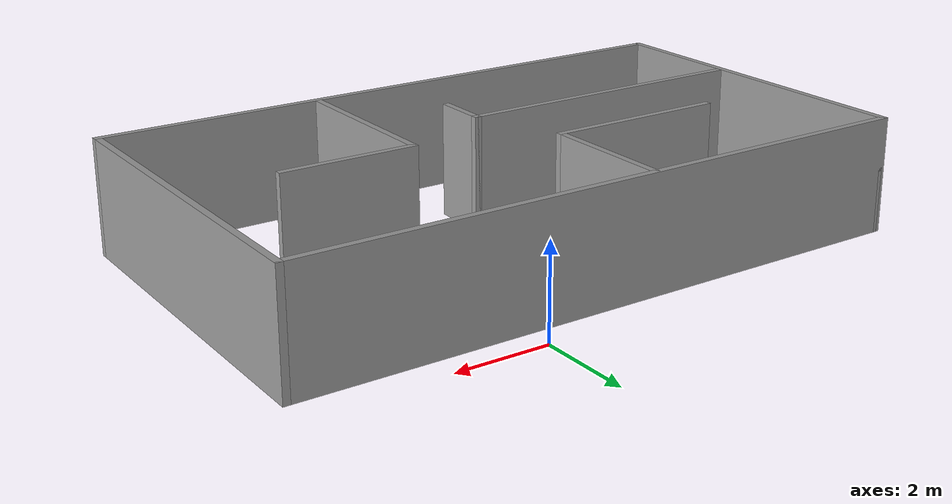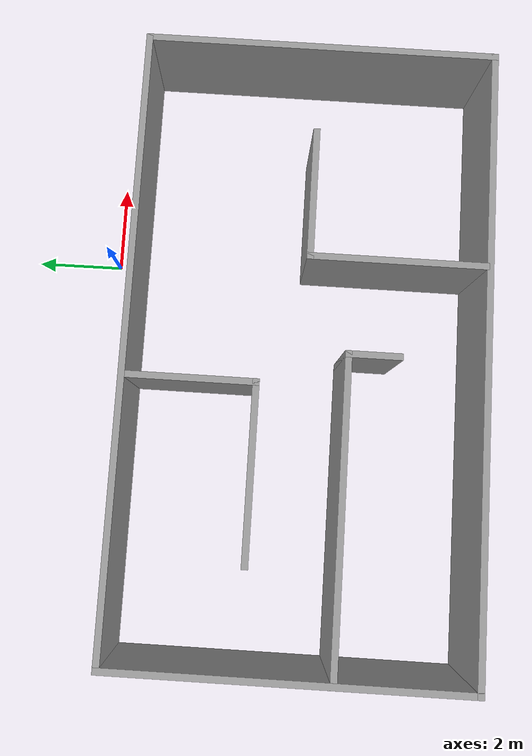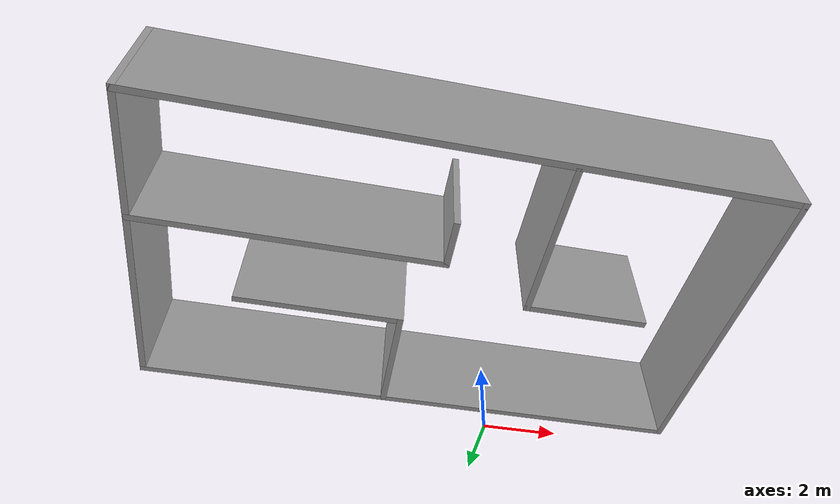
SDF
<?xml version='1.0'?>
<sdf version='1.7'>
  <model name='room'>
    <pose>-2.083 -4.28075 0 0 -0 0</pose>
    <link name='Wall_14'>
      <collision name='Wall_14_Collision'>
        <geometry>
          <box>
            <size>14 0.15 2.5</size>
          </box>
        </geometry>
        <pose>0 0 1.25 0 -0 0</pose>
      </collision>
      <visual name='Wall_14_Visual'>
        <pose>0 0 1.25 0 -0 0</pose>
        <geometry>
          <box>
            <size>14 0.15 2.5</size>
          </box>
        </geometry>
        <material>
          <script>
            <uri>file://media/materials/scripts/gazebo.material</uri>
            <name>Gazebo/Grey</name>
          </script>
          <ambient>1 1 1 1</ambient>
        </material>
        <meta>
          <layer>0</layer>
        </meta>
      </visual>
      <pose>0 3.64425 0 0 -0 0</pose>
    </link>
    <link name='Wall_17'>
      <collision name='Wall_17_Collision'>
        <geometry>
          <box>
            <size>8 0.15 2.5</size>
          </box>
        </geometry>
        <pose>0 0 1.25 0 -0 0</pose>
      </collision>
      <visual name='Wall_17_Visual'>
        <pose>0 0 1.25 0 -0 0</pose>
        <geometry>
          <box>
            <size>8 0.15 2.5</size>
          </box>
        </geometry>
        <material>
          <script>
            <uri>file://media/materials/scripts/gazebo.material</uri>
            <name>Gazebo/Grey</name>
          </script>
          <ambient>1 1 1 1</ambient>
        </material>
        <meta>
          <layer>0</layer>
        </meta>
      </visual>
      <pose>6.925 -0.28075 0 0 -0 -1.5708</pose>
    </link>
    <link name='Wall_18'>
      <collision name='Wall_18_Collision'>
        <geometry>
          <box>
            <size>14 0.15 2.5</size>
          </box>
        </geometry>
        <pose>0 0 1.25 0 -0 0</pose>
      </collision>
      <visual name='Wall_18_Visual'>
        <pose>0 0 1.25 0 -0 0</pose>
        <geometry>
          <box>
            <size>14 0.15 2.5</size>
          </box>
        </geometry>
        <material>
          <script>
            <uri>file://media/materials/scripts/gazebo.material</uri>
            <name>Gazebo/Grey</name>
          </script>
          <ambient>1 1 1 1</ambient>
        </material>
        <meta>
          <layer>0</layer>
        </meta>
      </visual>
      <pose>0 -4.20575 0 0 -0 3.14159</pose>
    </link>
    <link name='Wall_19'>
      <collision name='Wall_19_Collision'>
        <geometry>
          <box>
            <size>8 0.15 2.5</size>
          </box>
        </geometry>
        <pose>0 0 1.25 0 -0 0</pose>
      </collision>
      <visual name='Wall_19_Visual'>
        <pose>0 0 1.25 0 -0 0</pose>
        <geometry>
          <box>
            <size>8 0.15 2.5</size>
          </box>
        </geometry>
        <material>
          <script>
            <uri>file://media/materials/scripts/gazebo.material</uri>
            <name>Gazebo/Grey</name>
          </script>
          <ambient>1 1 1 1</ambient>
        </material>
        <meta>
          <layer>0</layer>
        </meta>
      </visual>
      <pose>-6.925 -0.28075 0 0 -0 1.5708</pose>
    </link>
    <link name='Wall_21'>
      <collision name='Wall_21_Collision'>
        <geometry>
          <box>
            <size>3 0.15 2.5</size>
          </box>
        </geometry>
        <pose>0 0 1.25 0 -0 0</pose>
      </collision>
      <visual name='Wall_21_Visual'>
        <pose>0 0 1.25 0 -0 0</pose>
        <geometry>
          <box>
            <size>3 0.15 2.5</size>
          </box>
        </geometry>
        <material>
          <script>
            <uri>file://media/materials/scripts/gazebo.material</uri>
            <name>Gazebo/Grey</name>
          </script>
          <ambient>1 1 1 1</ambient>
        </material>
        <meta>
          <layer>0</layer>
        </meta>
      </visual>
      <pose>-0.803968 2.17161 0 0 -0 -1.5708</pose>
    </link>
    <link name='Wall_22'>
      <collision name='Wall_22_Collision'>
        <geometry>
          <box>
            <size>4 0.15 2.5</size>
          </box>
        </geometry>
        <pose>0 0 1.25 0 -0 0</pose>
      </collision>
      <visual name='Wall_22_Visual'>
        <pose>0 0 1.25 0 -0 0</pose>
        <geometry>
          <box>
            <size>4 0.15 2.5</size>
          </box>
        </geometry>
        <material>
          <script>
            <uri>file://media/materials/scripts/gazebo.material</uri>
            <name>Gazebo/Grey</name>
          </script>
          <ambient>1 1 1 1</ambient>
        </material>
        <meta>
          <layer>0</layer>
        </meta>
      </visual>
      <pose>-2.72897 0.746612 0 0 -0 3.14159</pose>
    </link>
    <link name='Wall_24'>
      <collision name='Wall_24_Collision'>
        <geometry>
          <box>
            <size>7 0.15 2.5</size>
          </box>
        </geometry>
        <pose>0 0 1.25 0 -0 0</pose>
      </collision>
      <visual name='Wall_24_Visual'>
        <pose>0 0 1.25 0 -0 0</pose>
        <geometry>
          <box>
            <size>7 0.15 2.5</size>
          </box>
        </geometry>
        <material>
          <script>
            <uri>file://media/materials/scripts/gazebo.material</uri>
            <name>Gazebo/Grey</name>
          </script>
          <ambient>1 1 1 1</ambient>
        </material>
        <meta>
          <layer>0</layer>
        </meta>
      </visual>
      <pose>-3.49701 -1.20605 0 0 -0 0</pose>
    </link>
    <link name='Wall_25'>
      <collision name='Wall_25_Collision'>
        <geometry>
          <box>
            <size>1.25 0.15 2.5</size>
          </box>
        </geometry>
        <pose>0 0 1.25 0 -0 0</pose>
      </collision>
      <visual name='Wall_25_Visual'>
        <pose>0 0 1.25 0 -0 0</pose>
        <geometry>
          <box>
            <size>1.25 0.15 2.5</size>
          </box>
        </geometry>
        <material>
          <script>
            <uri>file://media/materials/scripts/gazebo.material</uri>
            <name>Gazebo/Grey</name>
          </script>
          <ambient>1 1 1 1</ambient>
        </material>
        <meta>
          <layer>0</layer>
        </meta>
      </visual>
      <pose>-0.072014 -1.75605 0 0 -0 -1.5708</pose>
    </link>
    <link name='Wall_27'>
      <collision name='Wall_27_Collision'>
        <geometry>
          <box>
            <size>4 0.15 2.5</size>
          </box>
        </geometry>
        <pose>0 0 1.25 0 -0 0</pose>
      </collision>
      <visual name='Wall_27_Visual'>
        <pose>0 0 1.25 0 -0 0</pose>
        <geometry>
          <box>
            <size>4 0.15 2.5</size>
          </box>
        </geometry>
        <material>
          <script>
            <uri>file://media/materials/scripts/gazebo.material</uri>
            <name>Gazebo/Grey</name>
          </script>
          <ambient>1 1 1 1</ambient>
        </material>
        <meta>
          <layer>0</layer>
        </meta>
      </visual>
      <pose>2.04092 -2.18713 0 0 -0 1.5708</pose>
    </link>
    <link name='Wall_28'>
      <collision name='Wall_28_Collision'>
        <geometry>
          <box>
            <size>3 0.15 2.5</size>
          </box>
        </geometry>
        <pose>0 0 1.25 0 -0 0</pose>
      </collision>
      <visual name='Wall_28_Visual'>
        <pose>0 0 1.25 0 -0 0</pose>
        <geometry>
          <box>
            <size>3 0.15 2.5</size>
          </box>
        </geometry>
        <material>
          <script>
            <uri>file://media/materials/scripts/gazebo.material</uri>
            <name>Gazebo/Grey</name>
          </script>
          <ambient>1 1 1 1</ambient>
        </material>
        <meta>
          <layer>0</layer>
        </meta>
      </visual>
      <pose>3.46592 -0.262125 0 0 -0 0</pose>
    </link>
    <static>1</static>
  </model>
</sdf>
